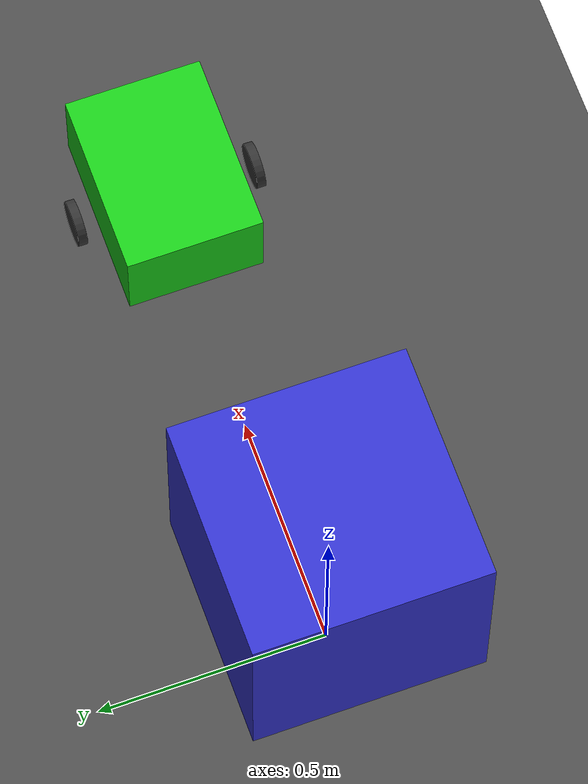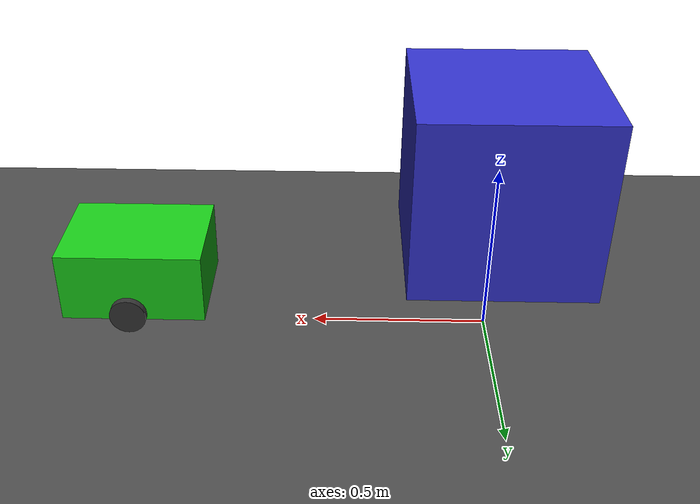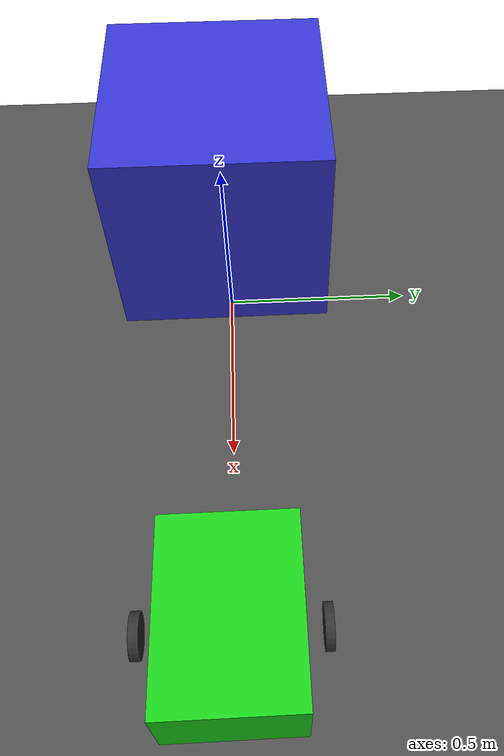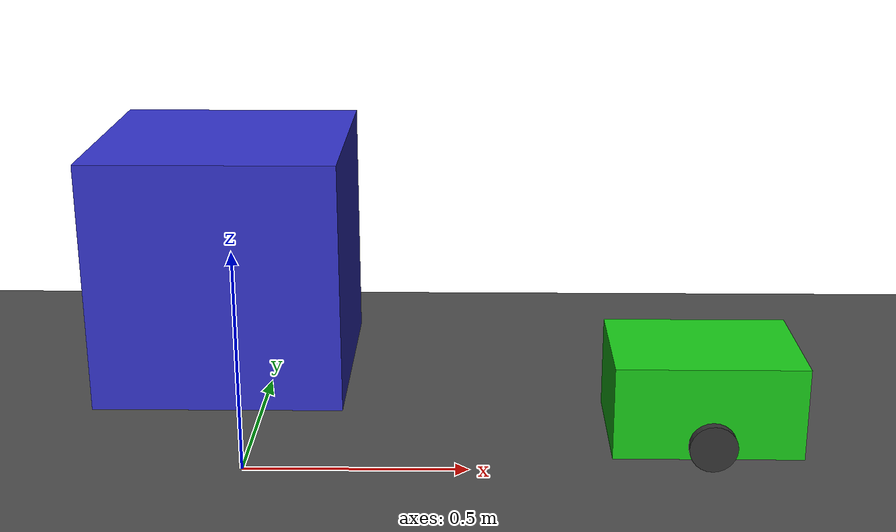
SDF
<?xml version="1.0" ?>
<sdf version="1.7">
  <world name="box_world">
    <gravity>0 0 -9.81</gravity>

    <!-- Ground plane (inline, no external model needed) -->
<model name="ground">
  <static>true</static>
  <link name="link">
    <collision name="collision">
      <geometry>
        <plane>
          <normal>0 0 1</normal>
          <size>200 200</size>
        </plane>
      </geometry>
      <surface>
        <friction>
          <ode>
            <mu>1.0</mu>
            <mu2>1.0</mu2>
          </ode>
        </friction>
      </surface>
    </collision>
    <visual name="visual">
      <geometry>
        <plane>
          <normal>0 0 1</normal>
          <size>200 200</size>
        </plane>
      </geometry>
      <material>
        <ambient>0.3 0.3 0.3 1</ambient>
        <diffuse>0.3 0.3 0.3 1</diffuse>
      </material>
    </visual>
  </link>
</model>

    <!-- A simple pushable box -->
    <model name="push_box">
      <pose>0 0 0.5 0 0 0</pose>
      <link name="link">
        <inertial><mass>5.0</mass></inertial>
        <collision name="collision">
          <geometry><box><size>0.5 0.5 0.5</size></box></geometry>
        </collision>
        <visual name="visual">
          <geometry><box><size>0.5 0.5 0.5</size></box></geometry>
          <material><ambient>0.2 0.2 0.8 1</ambient></material>
        </visual>
      </link>
    </model>

    <!-- Differential drive robot (with DiffDrive plugin) -->
<model name="diffdrive_robot">
  <pose>1 0 0.1 0 0 0</pose>

  <link name="chassis">
    <pose>0 0 0.1 0 0 0</pose>
    <inertial><mass>5.0</mass></inertial>
    <collision name="collision">
      <geometry><box><size>0.4 0.3 0.2</size></box></geometry>
      <surface><friction><ode><mu>1.0</mu><mu2>1.0</mu2></ode></friction></surface>
    </collision>
    <visual name="visual">
      <geometry><box><size>0.4 0.3 0.2</size></box></geometry>
      <material><ambient>0.1 0.8 0.1 1</ambient></material>
    </visual>
  </link>

  <link name="left_wheel">
  <pose>0 0.2 0.05 0 0 0</pose>
  <inertial><mass>0.2</mass></inertial>

  <collision name="collision">
    <geometry>
      <cylinder><radius>0.05</radius><length>0.02</length></cylinder>
    </geometry>
    <!-- rotate cylinder axis Z -> Y -->
    <pose>0 0 0 1.5708 0 0</pose>
  </collision>

  <visual name="visual">
    <geometry>
      <cylinder><radius>0.05</radius><length>0.02</length></cylinder>
    </geometry>
    <!-- rotate cylinder axis Z -> Y -->
    <pose>0 0 0 1.5708 0 0</pose>
    <material><ambient>0.2 0.2 0.2 1</ambient></material>
  </visual>
</link>

<link name="right_wheel">
  <pose>0 -0.2 0.05 0 0 0</pose>
  <inertial><mass>0.2</mass></inertial>

  <collision name="collision">
    <geometry>
      <cylinder><radius>0.05</radius><length>0.02</length></cylinder>
    </geometry>
    <!-- rotate cylinder axis Z -> Y -->
    <pose>0 0 0 1.5708 0 0</pose>
  </collision>

  <visual name="visual">
    <geometry>
      <cylinder><radius>0.05</radius><length>0.02</length></cylinder>
    </geometry>
    <!-- rotate cylinder axis Z -> Y -->
    <pose>0 0 0 1.5708 0 0</pose>
    <material><ambient>0.2 0.2 0.2 1</ambient></material>
  </visual>
</link>

  <!-- Wheels spin around Y -->
  <joint name="left_wheel_joint" type="revolute">
    <parent>chassis</parent>
    <child>left_wheel</child>
    <axis><xyz>0 1 0</xyz><limit><lower>-1e16</lower><upper>1e16</upper></limit></axis>
  </joint>
  <joint name="right_wheel_joint" type="revolute">
    <parent>chassis</parent>
    <child>right_wheel</child>
    <axis><xyz>0 1 0</xyz><limit><lower>-1e16</lower><upper>1e16</upper></limit></axis>
  </joint>

  <!-- DiffDrive system plugin -->
  <plugin filename="/usr/lib/x86_64-linux-gnu/gz-sim-8/plugins/libgz-sim-diff-drive-system.so"
          name="gz::sim::systems::DiffDrive">
    <left_joints>left_wheel_joint</left_joints>
    <right_joints>right_wheel_joint</right_joints>
    <wheel_separation>0.4</wheel_separation>
    <wheel_radius>0.05</wheel_radius>
    <topic>/model/diffdrive_robot/cmd_vel</topic>
  </plugin>
</model>
  </world>
</sdf>
